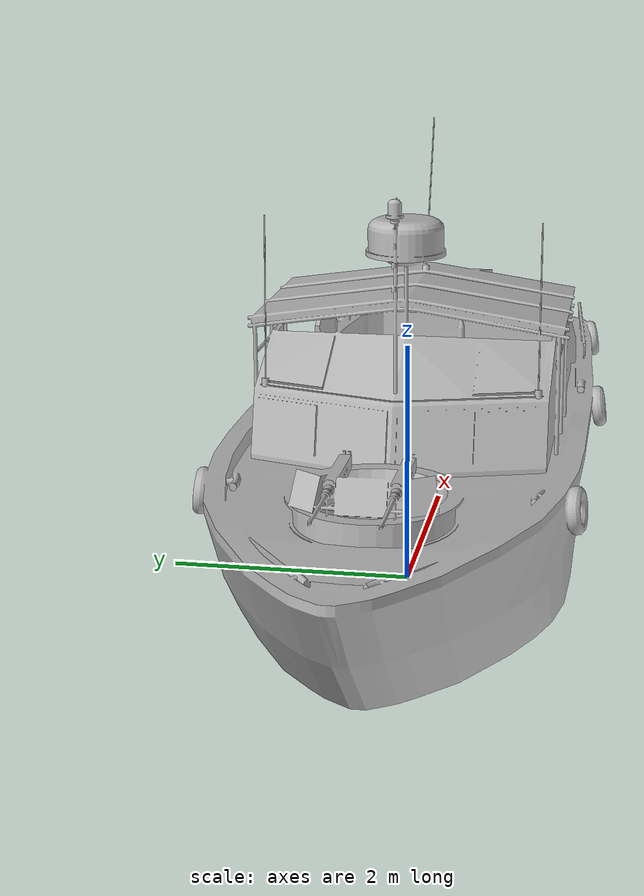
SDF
<?xml version="1.0"?>
<sdf version="1.10">
    <model name="commando">
        <!-- Allow dynamics -->
        <static>false</static>
        <link name="base_link">

            <!-- Inertial (REQUIRED)   -->
            <inertial>
                <pose>0 0 0 0 0 0</pose>
                <mass>150</mass>
                <inertia>
                    <ixx>20</ixx>
                    <iyy>20</iyy>
                    <izz>30</izz>
                    <ixy>0</ixy>
                    <ixz>0</ixz>
                    <iyz>0</iyz>
                </inertia>
            </inertial>

            <!-- Visual                -->
            <visual name="visual">
                <pose>0 0 0 0 0 0</pose>
                <geometry>
                    <mesh>
                        <uri>model://commando/meshes/commando.dae</uri>
                        <scale>1 1 1</scale>
                    </mesh>
                </geometry>
            </visual>

            <!-- Collision (required) -->
            <collision name="collision">
                <pose>0 0 0 0 0 0</pose>
                <geometry>
                    <box>
                        <size>3 1 0.6</size>
                    </box>
                </geometry>
            </collision>

            <!-- AIS Sensor (custom)   -->
            <sensor name="ais_sensor" type="custom" gz:type="ais">
                <always_on>true</always_on>
                <update_rate>1</update_rate>
                <noise_sigma>0.01</noise_sigma>
                <noise_amplitude>0.01</noise_amplitude>
            </sensor>

            <!-- IMU Sensor (STANDARD) -->
            <sensor name="imu_sensor" type="imu">
                <always_on>true</always_on>
                <update_rate>100</update_rate>
                <pose>0 0 0 0 0 0</pose>

                <imu>
                    <angular_velocity>
                        <x>
                            <noise type="gaussian">
                                <mean>0</mean>
                                <stddev>0.0001</stddev>
                            </noise>
                        </x>
                        <y>
                            <noise type="gaussian">
                                <mean>0</mean>
                                <stddev>0.0001</stddev>
                            </noise>
                        </y>
                        <z>
                            <noise type="gaussian">
                                <mean>0</mean>
                                <stddev>0.0001</stddev>
                            </noise>
                        </z>
                    </angular_velocity>

                    <linear_acceleration>
                        <x>
                            <noise type="gaussian">
                                <mean>0</mean>
                                <stddev>0.01</stddev>
                            </noise>
                        </x>
                        <y>
                            <noise type="gaussian">
                                <mean>0</mean>
                                <stddev>0.01</stddev>
                            </noise>
                        </y>
                        <z>
                            <noise type="gaussian">
                                <mean>0</mean>
                                <stddev>0.01</stddev>
                            </noise>
                        </z>
                    </linear_acceleration>
                </imu>
            </sensor>

            <!-- 2D LIDAR (STANDARD) -->
            <sensor name="lidar_sensor" type="gpu_lidar">
                <pose>0 0 0 0 0 0</pose>
                <always_on>true</always_on>
                <update_rate>10.0</update_rate>
                <visualize>true</visualize>
                <ray>
                    <scan>
                        <horizontal>
                            <samples>360</samples>
                            <resolution>1</resolution>
                            <min_angle>-3.14159</min_angle>
                            <max_angle>3.14159</max_angle>
                        </horizontal>
                        <vertical>
                            <samples>1</samples>
                            <min_angle>0.2618</min_angle>
                            <max_angle>0.2618</max_angle>
                        </vertical>
                    </scan>
                    <range>
                        <min>5.0</min>
                        <max>100.0</max>
                        <resolution>0.01</resolution>
                    </range>
                    <noise>
                        <type>gaussian</type>
                        <mean>0.0</mean>
                        <stddev>0.01</stddev>
                    </noise>
                </ray>
            </sensor>

            <!-- RADAR                 -->
            <sensor name="radar_sensor" type="custom" gz:type="radar">
                <always_on>true</always_on>
                <update_rate>1</update_rate>
                <is_on>true</is_on>

                <lidar_gz_topic>
                    world/lotusim/model/commando_center/link/base_link/sensor/lidar_sensor/scan/points
                </lidar_gz_topic>

                <min_range>5.0</min_range>
                <max_range>100.0</max_range>

                <psf_ellipse_width>15000</psf_ellipse_width>
                <psf_ellipse_height>5000</psf_ellipse_height>
                <psf_range_factor>0.2</psf_range_factor>

                <noise_sigma>0.01</noise_sigma>
                <noise_amplitude>0.01</noise_amplitude>
            </sensor>
        </link>
    </model>
</sdf>
